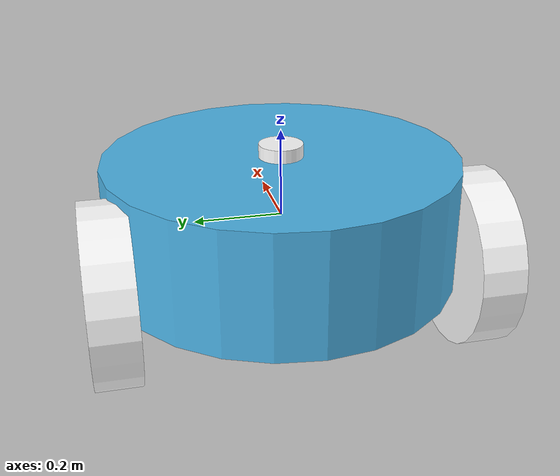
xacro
<?xml version="1.0"?>

<robot name="NO_NAME_GIVEN_FOR_THE_ROBOT" xmlns:xacro="http://ros.org/wiki/xacro">
  <!-- Импорт файла с подключениями различных плагинов Gazebo -->
  <xacro:include filename="robot.gazebo.xacro" />
  <!-- Импорт файла с настройками плагина детали лидара и описанием его внешнего вида -->
  <xacro:include filename="lidar.urdf.xacro" />

  <!-- Числовые константы (просто упрощаем себе жизнь) -->
  <xacro:property name="base_width" value="0.40"/>
  <xacro:property name="base_length" value="0.28"/>

  <xacro:property name="wheel_radius" value="0.20"/>
  <xacro:property name="wheel_width" value="0.10"/>
  <xacro:property name="wheel_ygap" value="0.20"/>
  <xacro:property name="wheel_zoff" value="0.08"/>
  <xacro:property name="wheel_xoff" value="0.14"/>

  <xacro:property name="caster_xoff" value="0.36"/>
  <xacro:property name="caster_zoff" value="0.08"/>

  <!-- Здесь описываем "материалы" (из какого цвета будут детаели) -->
  <material name="skyblue">
    <color rgba="0.3 0.7 0.9 1"/>
  </material>
  <material name="white">
    <color rgba="1.0 1.0 1.0 1"/>
  </material>

  <!-- Задаём макросы xacro -->
  <xacro:macro name="box_inertia" params="m w h d">
    <inertial>
      <origin xyz="0 0 0" rpy="${pi/2} 0 ${pi/2}"/>
      <mass value="${m}"/>
      <inertia ixx="${(m/12) * (h*h + d*d)}" ixy="0.0" ixz="0.0" iyy="${(m/12) * (w*w + d*d)}" iyz="0.0" izz="${(m/12) * (w*w + h*h)}"/>
    </inertial>
  </xacro:macro>

  <xacro:macro name="cylinder_inertia" params="m r h">
    <inertial>
      <origin xyz="0 0 0" rpy="${pi/2} 0 0" />
      <mass value="${m}"/>
      <inertia ixx="${(m/12) * (3*r*r + h*h)}" ixy = "0" ixz = "0" iyy="${(m/12) * (3*r*r + h*h)}" iyz = "0" izz="${(m/2) * (r*r)}"/>
    </inertial>
  </xacro:macro>

  <xacro:macro name="sphere_inertia" params="m r">
    <inertial>
      <mass value="${m}"/>
      <inertia ixx="${(2/5) * m * (r*r)}" ixy="0.0" ixz="0.0" iyy="${(2/5) * m * (r*r)}" iyz="0.0" izz="${(2/5) * m * (r*r)}"/>
    </inertial>
  </xacro:macro>

  <!-- Базовая фигура, к ней должно крепиться всё остальное -->
  <link name="base_link">
    <visual>
      <geometry>
        <cylinder length="${base_length}" radius="${base_width}"/>
      </geometry>
      <material name="skyblue" />
    </visual>

    <collision>
      <geometry>
        <cylinder length="${base_length}" radius="${base_width}"/>
      </geometry>
    </collision>

    <xacro:cylinder_inertia m="15" r="${base_width}" h="${base_length}"/>
  </link>

  <!-- Колёса, задаются сразу несколько колёс через макрос -->
  <xacro:macro name="wheel" params="prefix x_reflect y_reflect">
    <link name="${prefix}_link">
      <visual>
        <origin xyz="0 0 0" rpy="${pi/2} 0 0"/>
        <geometry>
            <cylinder radius="${wheel_radius}" length="${wheel_width}"/>
        </geometry>
        <material name="white" />
      </visual>

      <collision>
        <origin xyz="0 0 0" rpy="${pi/2} 0 0"/>
        <geometry>
          <cylinder radius="${wheel_radius}" length="${wheel_width}"/>
        </geometry>
      </collision>

      <xacro:cylinder_inertia m="0.5" r="${wheel_radius}" h="${wheel_width}"/>
    </link>

    <joint name="${prefix}_joint" type="continuous">
      <parent link="base_link"/>
      <child link="${prefix}_link"/>
      <origin xyz="${x_reflect*wheel_xoff} ${y_reflect*(base_width/2+wheel_ygap)} ${-wheel_zoff}" rpy="0 0 0"/>
      <axis xyz="0 1 0"/>
    </joint>
  </xacro:macro>

  <xacro:wheel prefix="wheel_left" x_reflect="-1" y_reflect="1" />
  <xacro:wheel prefix="wheel_right" x_reflect="-1" y_reflect="-1" />

  <!-- Сфера спереди снизу, называется кастер -->
  <link name="caster">
    <visual>
      <geometry>
        <sphere radius="${(wheel_radius+wheel_zoff-(base_width/4))}"/>
      </geometry>
      <material name="white" />
    </visual>

    <collision>
      <origin xyz="0 0 0" rpy="0 0 0"/>
      <geometry>
        <sphere radius="${(wheel_radius+wheel_zoff-(base_width/4))}"/>
      </geometry>
    </collision>

    <xacro:sphere_inertia m="0.5" r="${(wheel_radius+wheel_zoff-(base_width/4))}"/>
  </link>

  <joint name="caster_joint" type="fixed">
    <parent link="base_link"/>
    <child link="caster"/>
    <origin xyz="${caster_xoff} 0.0 ${-caster_zoff}" rpy="0 0 0"/>
  </joint>
</robot>

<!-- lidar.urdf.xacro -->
<robot xmlns:xacro="http://www.ros.org/wiki/xacro">

    <joint name="laser_joint" type="fixed">
        <parent link="base_link"/>
        <child link="laser_frame"/>
        <origin xyz="0.0 0.0 0.15" rpy="0 0 0"/>
    </joint>

    <link name="laser_frame">
        <visual>
            <geometry>
                <cylinder radius="0.05" length="0.04"/>
            </geometry>
            <material name="white"/>
        </visual>
        <visual>
            <origin xyz="0 0 -0.10"/>
            <geometry>
                <cylinder radius="0.01" length="0.20"/>
            </geometry>
            <material name="white"/>
        </visual>
        <collision>
            <geometry>
                <cylinder radius="0.05" length="0.04"/>
            </geometry>
        </collision>
        <inertial>
            <origin xyz="0 0 0" rpy="0 0 0"/>
            <mass value="0.1" />
            <inertia ixx="${(1/12) * 0.1 * (3*0.05*0.05 + 0.04*0.04)}" ixy="0.0" ixz="0.0"
                     iyy="${(1/12) * 0.1 * (3*0.05*0.05 + 0.04*0.04)}" iyz="0.0"
                     izz="${(1/2) * 0.1 * (0.05*0.05)}" />
        </inertial>
    </link>

    <gazebo reference="laser_frame">
        <material>Gazebo/Black</material>

        <sensor name='laser_sensor_frame' type='gpu_lidar'>
            <gz_frame_id>robot/laser_frame</gz_frame_id>
            <pose> 0 0 0 0 0 0 </pose>
            <visualize>true</visualize>
            <always_on>true</always_on>
            <update_rate>30</update_rate>
            <ray>
                <scan>
                    <horizontal>
                        <samples>360</samples>
                        <min_angle>-3.14</min_angle>
                        <max_angle>3.14</max_angle>
                    </horizontal>
                </scan>
                <range>
                    <min>0.3</min>
                    <max>12</max>
                </range>
                <noise>
                    <type>gaussian</type>
                    <mean>0.0</mean>
                    <stddev>0.007</stddev>
                </noise>
            </ray>
        </sensor>
    </gazebo>
</robot>
